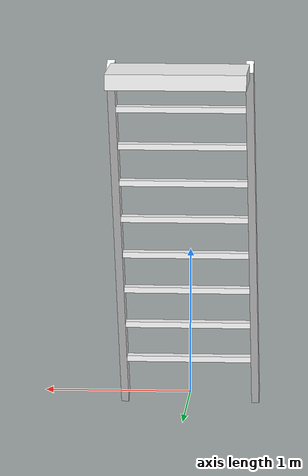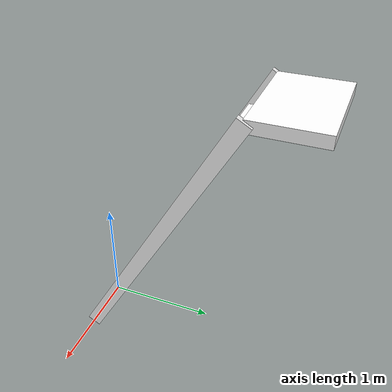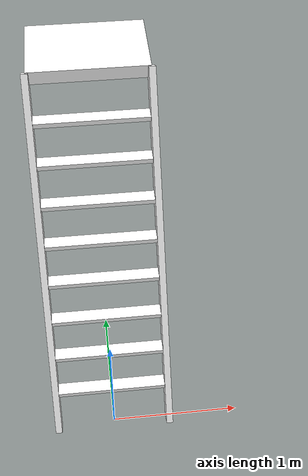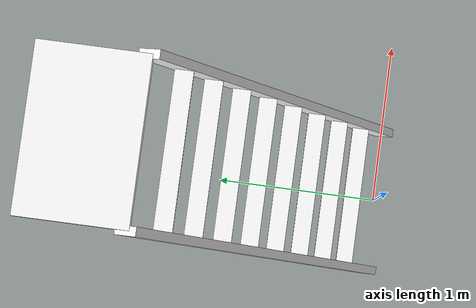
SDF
<?xml version="1.0"?>
<sdf version="1.5">

  <model name= "ladder_60deg_0rails" >
    <static>true</static>
         <link name="step0" >
           <pose>0 0.15396007178390025 0.26666666666666666 0 0 0 </pose>
           <inertial>
             <mass> 9.7548192</mass>
             <inertia>
             <ixx> 0.009571241631672</ixx>
             <iyy> 0.6596303120915761</iyy>
             <izz> 0.666841521540096</izz>
             <ixy>0</ixy>
             <ixz>0</ixz>
             <iyz>0</iyz>
             </inertia>
           </inertial>

           <collision name="collision">
             <geometry>
              <box>
                <size>  0.9  0.1016  0.0381  </size>
              </box>
             </geometry>
           </collision>

          <visual name="visual">
            <geometry>
              <box>
                <size>  0.9  0.1016  0.0381  </size>
              </box>
            </geometry>
            <material><diffuse>1 1 1 1</diffuse><specular>0.1 0.1 0.1 1</specular></material>
          </visual>
        </link>
         <link name="step1" >
           <pose>0 0.3079201435678005 0.5333333333333333 0 0 0 </pose>
           <inertial>
             <mass> 9.7548192</mass>
             <inertia>
             <ixx> 0.009571241631672</ixx>
             <iyy> 0.6596303120915761</iyy>
             <izz> 0.666841521540096</izz>
             <ixy>0</ixy>
             <ixz>0</ixz>
             <iyz>0</iyz>
             </inertia>
           </inertial>

           <collision name="collision">
             <geometry>
              <box>
                <size>  0.9  0.1016  0.0381  </size>
              </box>
             </geometry>
           </collision>

          <visual name="visual">
            <geometry>
              <box>
                <size>  0.9  0.1016  0.0381  </size>
              </box>
            </geometry>
            <material><diffuse>1 1 1 1</diffuse><specular>0.1 0.1 0.1 1</specular></material>
          </visual>
        </link>
         <link name="step2" >
           <pose>0 0.46188021535170076 0.8 0 0 0 </pose>
           <inertial>
             <mass> 9.7548192</mass>
             <inertia>
             <ixx> 0.009571241631672</ixx>
             <iyy> 0.6596303120915761</iyy>
             <izz> 0.666841521540096</izz>
             <ixy>0</ixy>
             <ixz>0</ixz>
             <iyz>0</iyz>
             </inertia>
           </inertial>

           <collision name="collision">
             <geometry>
              <box>
                <size>  0.9  0.1016  0.0381  </size>
              </box>
             </geometry>
           </collision>

          <visual name="visual">
            <geometry>
              <box>
                <size>  0.9  0.1016  0.0381  </size>
              </box>
            </geometry>
            <material><diffuse>1 1 1 1</diffuse><specular>0.1 0.1 0.1 1</specular></material>
          </visual>
        </link>
         <link name="step3" >
           <pose>0 0.615840287135601 1.0666666666666667 0 0 0 </pose>
           <inertial>
             <mass> 9.7548192</mass>
             <inertia>
             <ixx> 0.009571241631672</ixx>
             <iyy> 0.6596303120915761</iyy>
             <izz> 0.666841521540096</izz>
             <ixy>0</ixy>
             <ixz>0</ixz>
             <iyz>0</iyz>
             </inertia>
           </inertial>

           <collision name="collision">
             <geometry>
              <box>
                <size>  0.9  0.1016  0.0381  </size>
              </box>
             </geometry>
           </collision>

          <visual name="visual">
            <geometry>
              <box>
                <size>  0.9  0.1016  0.0381  </size>
              </box>
            </geometry>
            <material><diffuse>1 1 1 1</diffuse><specular>0.1 0.1 0.1 1</specular></material>
          </visual>
        </link>
         <link name="step4" >
           <pose>0 0.7698003589195013 1.3333333333333333 0 0 0 </pose>
           <inertial>
             <mass> 9.7548192</mass>
             <inertia>
             <ixx> 0.009571241631672</ixx>
             <iyy> 0.6596303120915761</iyy>
             <izz> 0.666841521540096</izz>
             <ixy>0</ixy>
             <ixz>0</ixz>
             <iyz>0</iyz>
             </inertia>
           </inertial>

           <collision name="collision">
             <geometry>
              <box>
                <size>  0.9  0.1016  0.0381  </size>
              </box>
             </geometry>
           </collision>

          <visual name="visual">
            <geometry>
              <box>
                <size>  0.9  0.1016  0.0381  </size>
              </box>
            </geometry>
            <material><diffuse>1 1 1 1</diffuse><specular>0.1 0.1 0.1 1</specular></material>
          </visual>
        </link>
         <link name="step5" >
           <pose>0 0.9237604307034015 1.6 0 0 0 </pose>
           <inertial>
             <mass> 9.7548192</mass>
             <inertia>
             <ixx> 0.009571241631672</ixx>
             <iyy> 0.6596303120915761</iyy>
             <izz> 0.666841521540096</izz>
             <ixy>0</ixy>
             <ixz>0</ixz>
             <iyz>0</iyz>
             </inertia>
           </inertial>

           <collision name="collision">
             <geometry>
              <box>
                <size>  0.9  0.1016  0.0381  </size>
              </box>
             </geometry>
           </collision>

          <visual name="visual">
            <geometry>
              <box>
                <size>  0.9  0.1016  0.0381  </size>
              </box>
            </geometry>
            <material><diffuse>1 1 1 1</diffuse><specular>0.1 0.1 0.1 1</specular></material>
          </visual>
        </link>
         <link name="step6" >
           <pose>0 1.0777205024873018 1.8666666666666667 0 0 0 </pose>
           <inertial>
             <mass> 9.7548192</mass>
             <inertia>
             <ixx> 0.009571241631672</ixx>
             <iyy> 0.6596303120915761</iyy>
             <izz> 0.666841521540096</izz>
             <ixy>0</ixy>
             <ixz>0</ixz>
             <iyz>0</iyz>
             </inertia>
           </inertial>

           <collision name="collision">
             <geometry>
              <box>
                <size>  0.9  0.1016  0.0381  </size>
              </box>
             </geometry>
           </collision>

          <visual name="visual">
            <geometry>
              <box>
                <size>  0.9  0.1016  0.0381  </size>
              </box>
            </geometry>
            <material><diffuse>1 1 1 1</diffuse><specular>0.1 0.1 0.1 1</specular></material>
          </visual>
        </link>
         <link name="step7" >
           <pose>0 1.231680574271202 2.1333333333333333 0 0 0 </pose>
           <inertial>
             <mass> 9.7548192</mass>
             <inertia>
             <ixx> 0.009571241631672</ixx>
             <iyy> 0.6596303120915761</iyy>
             <izz> 0.666841521540096</izz>
             <ixy>0</ixy>
             <ixz>0</ixz>
             <iyz>0</iyz>
             </inertia>
           </inertial>

           <collision name="collision">
             <geometry>
              <box>
                <size>  0.9  0.1016  0.0381  </size>
              </box>
             </geometry>
           </collision>

          <visual name="visual">
            <geometry>
              <box>
                <size>  0.9  0.1016  0.0381  </size>
              </box>
            </geometry>
            <material><diffuse>1 1 1 1</diffuse><specular>0.1 0.1 0.1 1</specular></material>
          </visual>
        </link>
    <link name="landing">
      <pose>0 1.6856406460551023 2.4 0 0 0 </pose>
        <inertial>
          <mass> 57.607200000000006</mass>
          <inertia>
          <ixx> 1.735184598966</ixx>
          <iyy> 3.8954545989660008</iyy>
          <izz> 5.616702</izz>
          <ixy>0</ixy>
          <ixz>0</ixz>
          <iyz>0</iyz>
          </inertia>
        </inertial>

        <collision name="collision">
          <geometry>
           <box>
             <size> 0.9 0.6 0.1016</size>
           </box>
          </geometry>
        </collision>

        <visual name="visual">
          <geometry>
            <box>
             <size> 0.9 0.6 0.1016</size>
            </box>
          </geometry>
          <material><diffuse>1 1 1 1</diffuse><specular>0.1 0.1 0.1 1</specular></material>
        </visual>
    </link>

      <link name="left_side_wall" >
        <pose>-0.45 0.6928203230275511 1.2 1.0471975511965976 0 0 </pose>
        <collision name="collision">
          <geometry>
            <box>
              <size> 0.0508  2.851281292110204  0.13 </size>
            </box>
          </geometry>
        </collision>

        <visual name="visual">
          <geometry>
            <box>
              <size> 0.0508  2.851281292110204  0.13 </size>
            </box>
          </geometry>
          <material><diffuse>1 1 1 1</diffuse><specular>0.1 0.1 0.1 1</specular></material>
        </visual>

      </link>
      <link name="right_side_wall" >
        <pose>0.45 0.6928203230275511 1.2 1.0471975511965976 0 0 </pose>
        <collision name="collision">
          <geometry>
            <box>
              <size> 0.0508  2.851281292110204  0.13 </size>
            </box>
          </geometry>
        </collision>

        <visual name="visual">
          <geometry>
            <box>
              <size> 0.0508  2.851281292110204  0.13 </size>
            </box>
          </geometry>
          <material><diffuse>1 1 1 1</diffuse><specular>0.1 0.1 0.1 1</specular></material>
        </visual>

      </link>

  </model>
</sdf>
